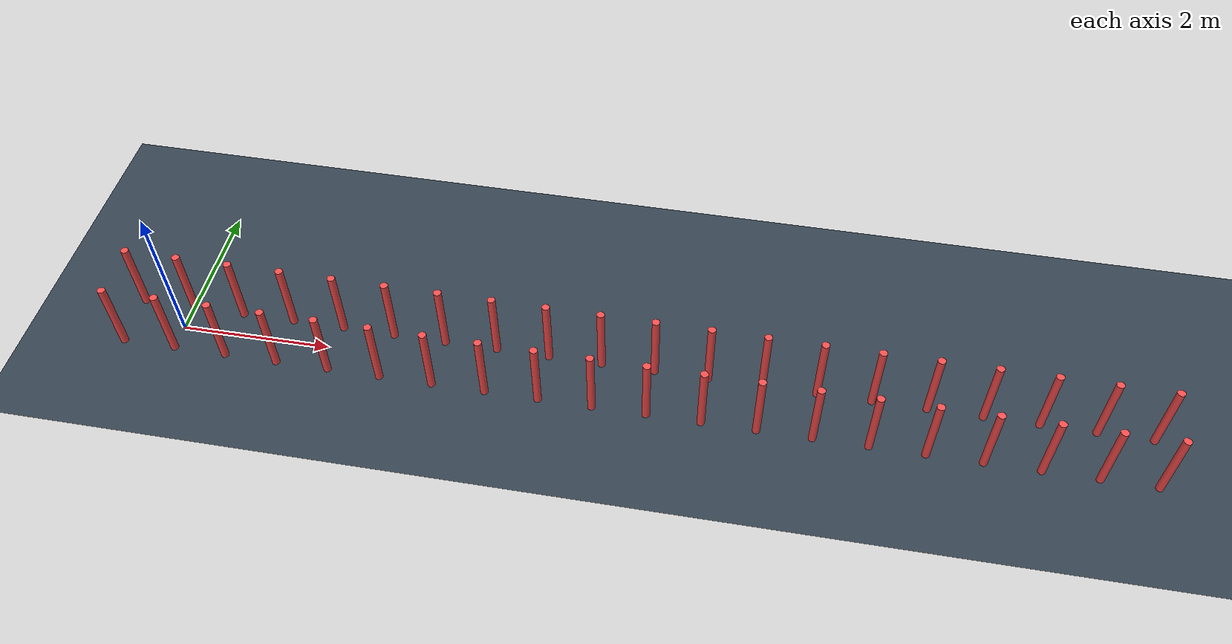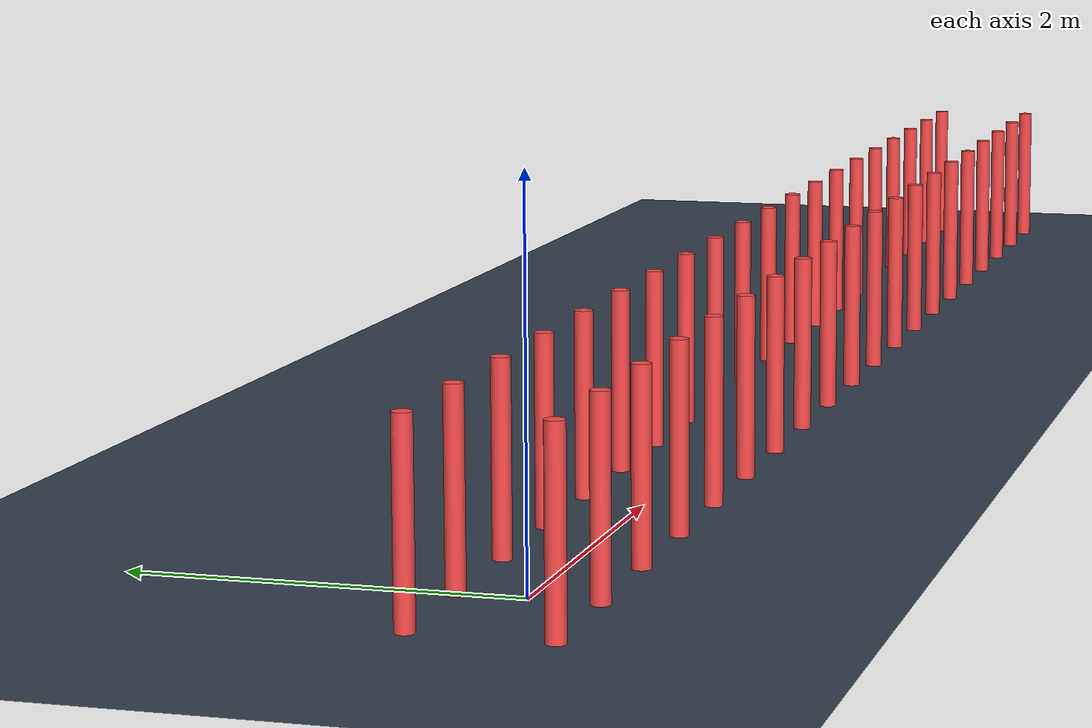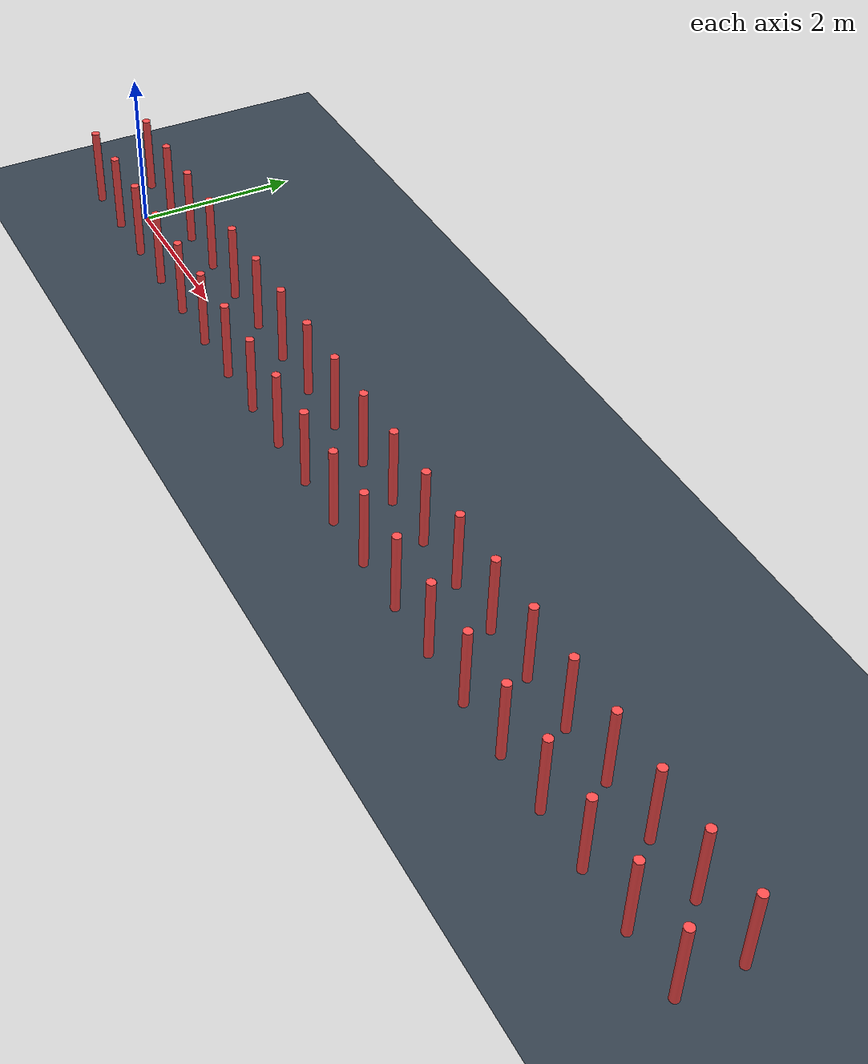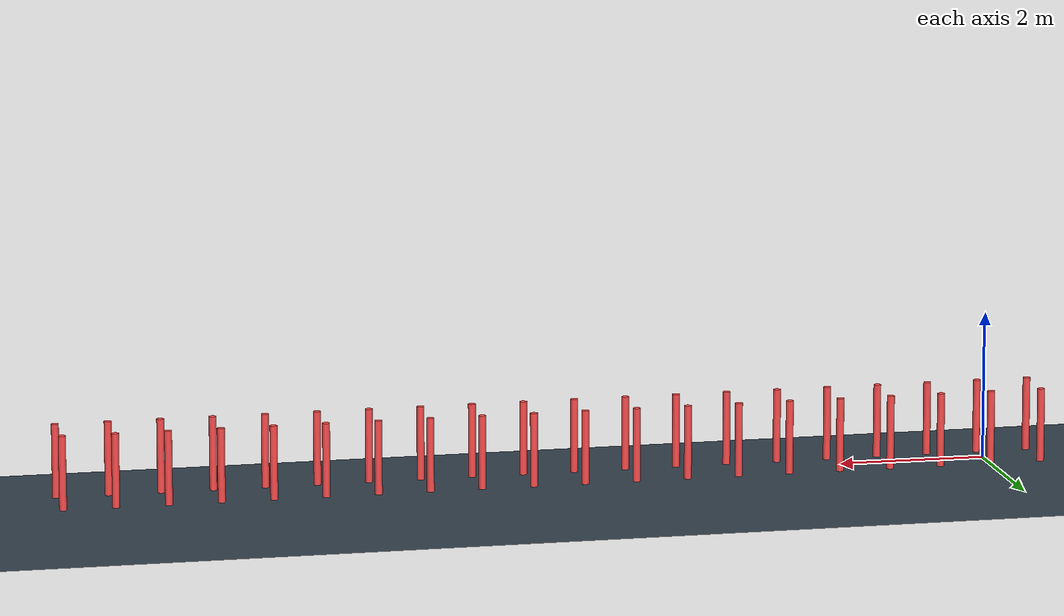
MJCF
<mujoco model="two_poles_solid_colors">

  <compiler angle="degree" coordinate="local" inertiafromgeom="true" autolimits="true" />
  <option timestep="0.01" integrator="RK4" gravity="0 0 -9.81" />

  <default>
    <geom friction="0 0 0" />
  </default>

  <worldbody>

    <light name="sun" pos="0 0 5" dir="0 0 -1" diffuse="1 1 1" specular="0.1 0.1 0.1" directional="true" cutoff="100" />

    <geom name="ground" type="plane" pos="0 0 0" size="100 100 0.5" rgba="0.2 0.25 0.3 1" />

    <body><geom type="cylinder" pos="-0.70 -0.35 0.5" size="0.05 0.5" rgba="1 0.3 0.3 1" name="pole_0_0" /></body><body><geom type="cylinder" pos="0.00 -0.35 0.5" size="0.05 0.5" rgba="1 0.3 0.3 1" name="pole_0_1" /></body><body><geom type="cylinder" pos="0.70 -0.35 0.5" size="0.05 0.5" rgba="1 0.3 0.3 1" name="pole_0_2" /></body><body><geom type="cylinder" pos="1.40 -0.35 0.5" size="0.05 0.5" rgba="1 0.3 0.3 1" name="pole_0_3" /></body><body><geom type="cylinder" pos="2.10 -0.35 0.5" size="0.05 0.5" rgba="1 0.3 0.3 1" name="pole_0_4" /></body><body><geom type="cylinder" pos="2.80 -0.35 0.5" size="0.05 0.5" rgba="1 0.3 0.3 1" name="pole_0_5" /></body><body><geom type="cylinder" pos="3.50 -0.35 0.5" size="0.05 0.5" rgba="1 0.3 0.3 1" name="pole_0_6" /></body><body><geom type="cylinder" pos="4.20 -0.35 0.5" size="0.05 0.5" rgba="1 0.3 0.3 1" name="pole_0_7" /></body><body><geom type="cylinder" pos="4.90 -0.35 0.5" size="0.05 0.5" rgba="1 0.3 0.3 1" name="pole_0_8" /></body><body><geom type="cylinder" pos="5.60 -0.35 0.5" size="0.05 0.5" rgba="1 0.3 0.3 1" name="pole_0_9" /></body><body><geom type="cylinder" pos="6.30 -0.35 0.5" size="0.05 0.5" rgba="1 0.3 0.3 1" name="pole_0_10" /></body><body><geom type="cylinder" pos="7.00 -0.35 0.5" size="0.05 0.5" rgba="1 0.3 0.3 1" name="pole_0_11" /></body><body><geom type="cylinder" pos="7.70 -0.35 0.5" size="0.05 0.5" rgba="1 0.3 0.3 1" name="pole_0_12" /></body><body><geom type="cylinder" pos="8.40 -0.35 0.5" size="0.05 0.5" rgba="1 0.3 0.3 1" name="pole_0_13" /></body><body><geom type="cylinder" pos="9.10 -0.35 0.5" size="0.05 0.5" rgba="1 0.3 0.3 1" name="pole_0_14" /></body><body><geom type="cylinder" pos="9.80 -0.35 0.5" size="0.05 0.5" rgba="1 0.3 0.3 1" name="pole_0_15" /></body><body><geom type="cylinder" pos="10.50 -0.35 0.5" size="0.05 0.5" rgba="1 0.3 0.3 1" name="pole_0_16" /></body><body><geom type="cylinder" pos="11.20 -0.35 0.5" size="0.05 0.5" rgba="1 0.3 0.3 1" name="pole_0_17" /></body><body><geom type="cylinder" pos="11.90 -0.35 0.5" size="0.05 0.5" rgba="1 0.3 0.3 1" name="pole_0_18" /></body><body><geom type="cylinder" pos="12.60 -0.35 0.5" size="0.05 0.5" rgba="1 0.3 0.3 1" name="pole_0_19" /></body><body><geom type="cylinder" pos="-0.70 0.35 0.5" size="0.05 0.5" rgba="1 0.3 0.3 1" name="pole_1_0" /></body><body><geom type="cylinder" pos="0.00 0.35 0.5" size="0.05 0.5" rgba="1 0.3 0.3 1" name="pole_1_1" /></body><body><geom type="cylinder" pos="0.70 0.35 0.5" size="0.05 0.5" rgba="1 0.3 0.3 1" name="pole_1_2" /></body><body><geom type="cylinder" pos="1.40 0.35 0.5" size="0.05 0.5" rgba="1 0.3 0.3 1" name="pole_1_3" /></body><body><geom type="cylinder" pos="2.10 0.35 0.5" size="0.05 0.5" rgba="1 0.3 0.3 1" name="pole_1_4" /></body><body><geom type="cylinder" pos="2.80 0.35 0.5" size="0.05 0.5" rgba="1 0.3 0.3 1" name="pole_1_5" /></body><body><geom type="cylinder" pos="3.50 0.35 0.5" size="0.05 0.5" rgba="1 0.3 0.3 1" name="pole_1_6" /></body><body><geom type="cylinder" pos="4.20 0.35 0.5" size="0.05 0.5" rgba="1 0.3 0.3 1" name="pole_1_7" /></body><body><geom type="cylinder" pos="4.90 0.35 0.5" size="0.05 0.5" rgba="1 0.3 0.3 1" name="pole_1_8" /></body><body><geom type="cylinder" pos="5.60 0.35 0.5" size="0.05 0.5" rgba="1 0.3 0.3 1" name="pole_1_9" /></body><body><geom type="cylinder" pos="6.30 0.35 0.5" size="0.05 0.5" rgba="1 0.3 0.3 1" name="pole_1_10" /></body><body><geom type="cylinder" pos="7.00 0.35 0.5" size="0.05 0.5" rgba="1 0.3 0.3 1" name="pole_1_11" /></body><body><geom type="cylinder" pos="7.70 0.35 0.5" size="0.05 0.5" rgba="1 0.3 0.3 1" name="pole_1_12" /></body><body><geom type="cylinder" pos="8.40 0.35 0.5" size="0.05 0.5" rgba="1 0.3 0.3 1" name="pole_1_13" /></body><body><geom type="cylinder" pos="9.10 0.35 0.5" size="0.05 0.5" rgba="1 0.3 0.3 1" name="pole_1_14" /></body><body><geom type="cylinder" pos="9.80 0.35 0.5" size="0.05 0.5" rgba="1 0.3 0.3 1" name="pole_1_15" /></body><body><geom type="cylinder" pos="10.50 0.35 0.5" size="0.05 0.5" rgba="1 0.3 0.3 1" name="pole_1_16" /></body><body><geom type="cylinder" pos="11.20 0.35 0.5" size="0.05 0.5" rgba="1 0.3 0.3 1" name="pole_1_17" /></body><body><geom type="cylinder" pos="11.90 0.35 0.5" size="0.05 0.5" rgba="1 0.3 0.3 1" name="pole_1_18" /></body><body><geom type="cylinder" pos="12.60 0.35 0.5" size="0.05 0.5" rgba="1 0.3 0.3 1" name="pole_1_19" /></body></worldbody>
</mujoco>
